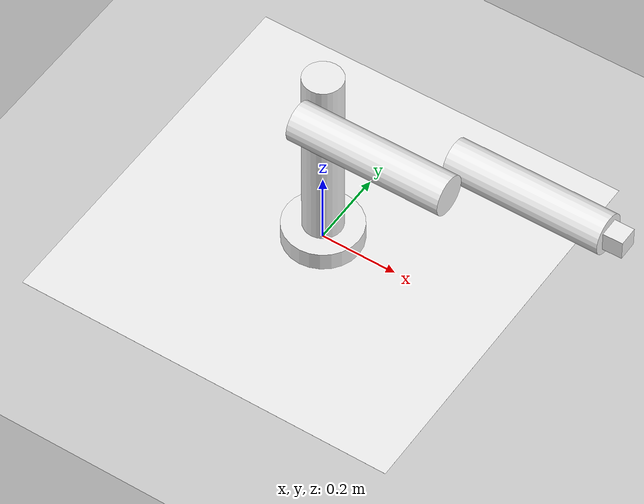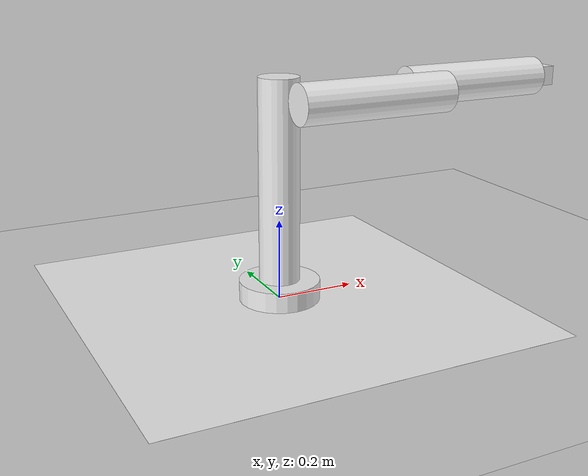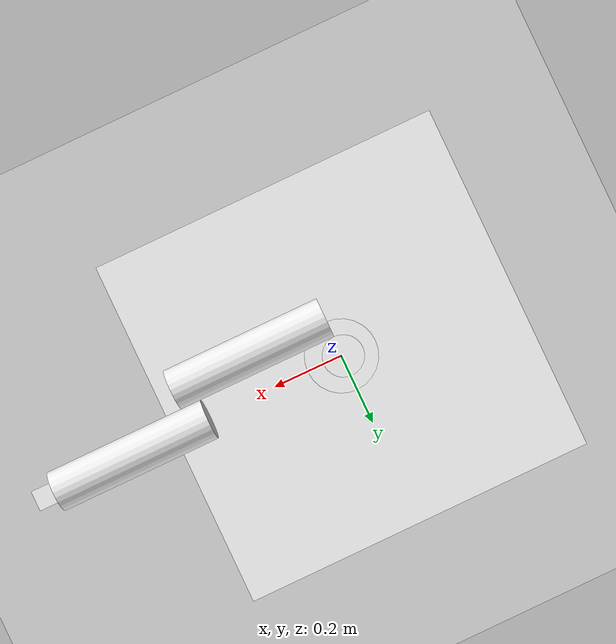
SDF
<?xml version="1.0" ?>
<sdf version="1.8">
  <world name="demo">
    <plugin
      filename="gz-sim-physics-system"
      name="gz::sim::systems::Physics">
    </plugin>
    <plugin
      filename="gz-sim-sensors-system"
      name="gz::sim::systems::Sensors">
      <render_engine>ogre2</render_engine>
    </plugin>
    <plugin
      filename="gz-sim-scene-broadcaster-system"
      name="gz::sim::systems::SceneBroadcaster">
    </plugin>
    <plugin
      filename="gz-sim-user-commands-system"
      name="gz::sim::systems::UserCommands">
    </plugin>
    <plugin
      filename="BasicSystem"
      name="pinchy_robot_gazebo::BasicSystem">
    </plugin>
    <plugin
      filename="FullSystem"
      name="pinchy_robot_gazebo::FullSystem">
    </plugin>

    <light name="sun" type="directional">
      <cast_shadows>true</cast_shadows>
      <pose>0 0 10 0 0 0</pose>
      <diffuse>0.8 0.8 0.8 1</diffuse>
      <specular>0.2 0.2 0.2 1</specular>
      <attenuation>
        <range>1000</range>
        <constant>0.9</constant>
        <linear>0.01</linear>
        <quadratic>0.001</quadratic>
      </attenuation>
      <direction>-0.5 0.1 -0.9</direction>
    </light>

    <model name="ground_plane">
      <static>true</static>
      <link name="link">
        <collision name="collision">
          <geometry>
            <plane>
              <normal>0 0 1</normal>
              <size>100 100</size>
            </plane>
          </geometry>
        </collision>
        <visual name="visual">
          <geometry>
            <plane>
              <normal>0 0 1</normal>
              <size>100 100</size>
            </plane>
          </geometry>
          <material>
            <ambient>0.8 0.8 0.8 1</ambient>
            <diffuse>0.8 0.8 0.8 1</diffuse>
            <specular>0.8 0.8 0.8 1</specular>
          </material>
        </visual>
      </link>
    </model>

    <model name="pinchy">
      <self_collide>true</self_collide>
      <pose>0 0 0 0 0 0</pose>
      <include merge="true">
        <uri>package://pinchy_robot_description/models/pinchy</uri>
      </include>

      <plugin
        filename="gz-sim-joint-state-publisher-system"
        name="gz::sim::systems::JointStatePublisher">
      </plugin>

      <plugin
        filename="gz-sim-pose-publisher-system"
        name="gz::sim::systems::PosePublisher">
        <publish_link_pose>true</publish_link_pose>
        <use_pose_vector_msg>true</use_pose_vector_msg>
        <static_publisher>true</static_publisher>
        <static_update_frequency>1</static_update_frequency>
      </plugin>

      <plugin
        filename="gz-sim-odometry-publisher-system"
        name="gz::sim::systems::OdometryPublisher">
        <odom_frame>pinchy/odom</odom_frame>
        <robot_base_frame>pinchy</robot_base_frame>
      </plugin>
    </model>

  </world>
</sdf>

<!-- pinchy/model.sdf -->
<sdf version='1.11'>
  <model name='pinchy'>
    <link name='massive_block'>
      <pose>0 0 0 0 0 0</pose>
      <inertial>
        <mass>1000</mass>
      </inertial>
      <collision name='massive_block_collision'>
        <pose>0 0 0 0 0 0</pose>
        <geometry>
          <box>
            <size>1 1 0.0001</size>
          </box>
        </geometry>
      </collision>
      <visual name='massive_block_visual'>
        <pose>0 0 0 0 0 0</pose>
        <geometry>
          <box>
            <size>1 1 0.0001</size>
          </box>
        </geometry>
        <material>
          <diffuse>0.9375 0.9375 0.9375 1</diffuse>
          <ambient>0.9375 0.9375 0.9375 1</ambient>
        </material>
      </visual>
    </link>
    <joint name='massive_block_to_base_link' type='fixed'>
      <parent>massive_block</parent>
      <child>base_link</child>
    </joint>
    <link name='base_link'>
      <pose>0 0 0 0 -0 0</pose>
      <inertial>
        <pose>0 0 0.025 0 -0 0</pose>
        <mass>1</mass>
        <inertia>
          <ixx>0.0027</ixx>
          <ixy>0</ixy>
          <ixz>0</ixz>
          <iyy>0.0027</iyy>
          <iyz>0</iyz>
          <izz>0.005</izz>
        </inertia>
      </inertial>
      <collision name='base_link_collision'>
        <pose>0 0 0.025 0 -0 0</pose>
        <geometry>
          <cylinder>
            <length>0.05</length>
            <radius>0.1</radius>
          </cylinder>
        </geometry>
      </collision>
      <visual name='base_link_visual'>
        <pose>0 0 0.025 0 -0 0</pose>
        <geometry>
          <cylinder>
            <length>0.05</length>
            <radius>0.1</radius>
          </cylinder>
        </geometry>
        <material>
          <diffuse>0.9375 0.9375 0.9375 1</diffuse>
          <ambient>0.9375 0.9375 0.9375 1</ambient>
        </material>
      </visual>
    </link>
    <joint name='base_link_to_torso' type='revolute'>
      <pose relative_to='base_link'>0 0 0.05 0 0 0</pose>
      <parent>base_link</parent>
      <child>torso</child>
      <axis>
        <xyz>0 0 1</xyz>
        <limit>
          <lower>-inf</lower>
          <upper>inf</upper>
        </limit>
        <dynamics>
          <spring_reference>0</spring_reference>
          <spring_stiffness>0</spring_stiffness>
        </dynamics>
      </axis>
    </joint>
    <link name='torso'>
      <pose relative_to='base_link_to_torso'>0 0 0 0 0 0</pose>
      <inertial>
        <pose>0 0 0.25 0 0 0</pose>
        <mass>1</mass>
        <inertia>
          <ixx>0.002146</ixx>
          <ixy>0</ixy>
          <ixz>0</ixz>
          <iyy>0.002146</iyy>
          <iyz>0</iyz>
          <izz>0.00125</izz>
        </inertia>
      </inertial>
      <collision name='torso_collision'>
        <pose>0 0 0.25 0 0 0</pose>
        <geometry>
          <cylinder>
            <length>0.5</length>
            <radius>0.05</radius>
          </cylinder>
        </geometry>
      </collision>
      <visual name='torso_visual'>
        <pose>0 0 0.25 0 0 0</pose>
        <geometry>
          <cylinder>
            <length>0.5</length>
            <radius>0.05</radius>
          </cylinder>
        </geometry>
        <material>
          <diffuse>0.9375 0.9375 0.9375 1</diffuse>
          <ambient>0.9375 0.9375 0.9375 1</ambient>
        </material>
      </visual>
    </link>
    <joint name='torso_to_upper_arm' type='revolute'>
      <pose relative_to='torso'>0 -0.1 0.45 3.1415926535897931 1.5707926536359933 3.1415926535897931</pose>
      <parent>torso</parent>
      <child>upper_arm</child>
      <axis>
        <xyz>0 1 0</xyz>
        <limit>
          <lower>-inf</lower>
          <upper>inf</upper>
        </limit>
        <dynamics>
          <spring_reference>0</spring_reference>
          <spring_stiffness>0</spring_stiffness>
        </dynamics>
      </axis>
    </joint>
    <link name='upper_arm'>
      <pose relative_to='torso_to_upper_arm'>0 0 0 0 0 0</pose>
      <inertial>
        <pose>0 0 0.2 0 0 0</pose>
        <mass>1</mass>
        <inertia>
          <ixx>0.01396</ixx>
          <ixy>0</ixy>
          <ixz>0</ixz>
          <iyy>0.01396</iyy>
          <iyz>0</iyz>
          <izz>0.00125</izz>
        </inertia>
      </inertial>
      <collision name='upper_arm_collision'>
        <pose>0 0 0.2 0 0 0</pose>
        <geometry>
          <cylinder>
            <length>0.40000000000000002</length>
            <radius>0.050000000000000003</radius>
          </cylinder>
        </geometry>
      </collision>
      <visual name='upper_arm_visual'>
        <pose>0 0 0.2 0 0 0</pose>
        <geometry>
          <cylinder>
            <length>0.4</length>
            <radius>0.05</radius>
          </cylinder>
        </geometry>
        <material>
          <diffuse>0.9375 0.9375 0.9375 1</diffuse>
          <ambient>0.9375 0.9375 0.9375 1</ambient>
        </material>
      </visual>
    </link>
    <joint name='upper_arm_to_lower_arm' type='revolute'>
      <pose relative_to='upper_arm'>0 0.1 0.35 0 0 0</pose>
      <parent>upper_arm</parent>
      <child>lower_arm</child>
      <axis>
        <xyz>0 1 0</xyz>
        <limit>
          <lower>-inf</lower>
          <upper>inf</upper>
        </limit>
        <dynamics>
          <spring_reference>0</spring_reference>
          <spring_stiffness>0</spring_stiffness>
        </dynamics>
      </axis>
    </joint>
    <link name='lower_arm'>
      <pose relative_to='upper_arm_to_lower_arm'>0 0 0 0 0 0</pose>
      <inertial>
        <pose>0 0 0.2 0 0 0</pose>
        <mass>1</mass>
        <inertia>
          <ixx>0.01396</ixx>
          <ixy>0</ixy>
          <ixz>0</ixz>
          <iyy>0.01396</iyy>
          <iyz>0</iyz>
          <izz>0.00125</izz>
        </inertia>
      </inertial>
      <collision name='lower_arm_collision'>
        <pose>0 0 0.2 0 0 0</pose>
        <geometry>
          <cylinder>
            <length>0.4</length>
            <radius>0.05</radius>
          </cylinder>
        </geometry>
      </collision>
      <visual name='lower_arm_visual'>
        <pose>0 0 0.2 0 0 0</pose>
        <geometry>
          <cylinder>
            <length>0.4</length>
            <radius>0.05</radius>
          </cylinder>
        </geometry>
        <material>
          <diffuse>0.9375 0.9375 0.9375 1</diffuse>
          <ambient>0.9375 0.9375 0.9375 1</ambient>
        </material>
      </visual>
    </link>
    <joint name='lower_arm_to_hand' type='revolute'>
      <pose relative_to='lower_arm'>0 0 0.425 0 0 0</pose>
      <parent>lower_arm</parent>
      <child>hand</child>
      <axis>
        <xyz>0 1 0</xyz>
        <limit>
          <lower>-inf</lower>
          <upper>inf</upper>
        </limit>
        <dynamics>
          <spring_reference>0</spring_reference>
          <spring_stiffness>0</spring_stiffness>
        </dynamics>
      </axis>
    </joint>
    <link name='hand'>
      <pose relative_to='lower_arm_to_hand'>0 0 0 0 0 0</pose>
      <inertial>
        <pose>0 0 0 0 0 0</pose>
        <mass>1</mass>
        <inertia>
          <ixx>0.00042</ixx>
          <ixy>0</ixy>
          <ixz>0</ixz>
          <iyy>0.00042</iyy>
          <iyz>0</iyz>
          <izz>0.00042</izz>
        </inertia>
      </inertial>
      <collision name='hand_collision'>
        <pose>0 0 0 0 0 0</pose>
        <geometry>
          <box>
            <size>0.05 0.05 0.05</size>
          </box>
        </geometry>
      </collision>
      <visual name='hand_visual'>
        <pose>0 0 0 0 0 0</pose>
        <geometry>
          <box>
            <size>0.05 0.05 0.05</size>
          </box>
        </geometry>
        <material>
          <diffuse>0.9375 0.9375 0.9375 1</diffuse>
          <ambient>0.9375 0.9375 0.9375 1</ambient>
        </material>
      </visual>
    </link>
  </model>
</sdf>
